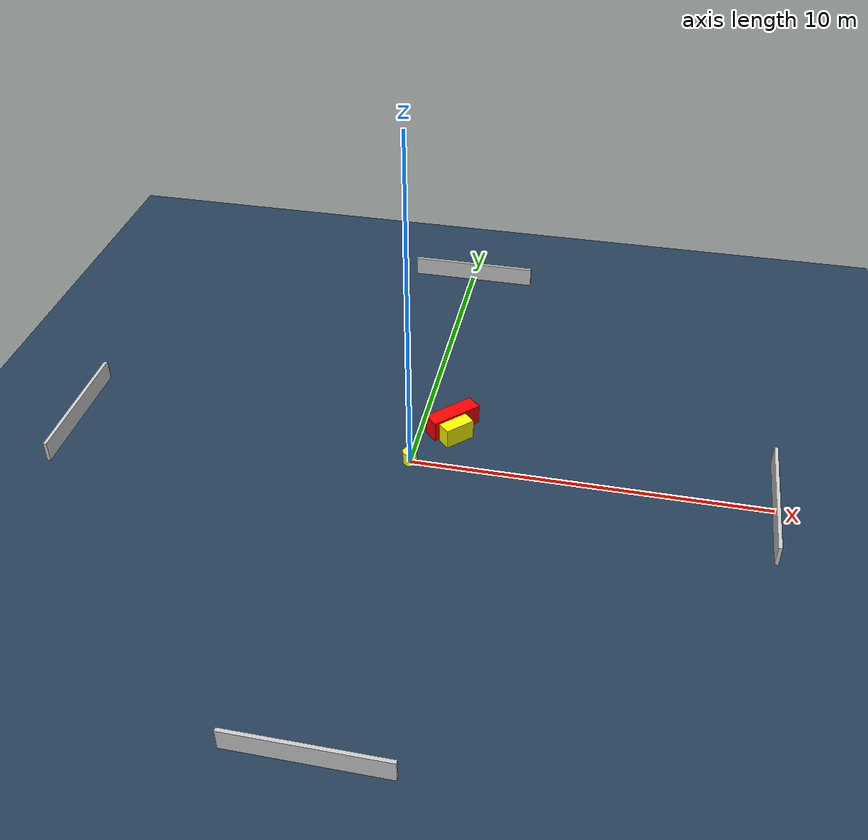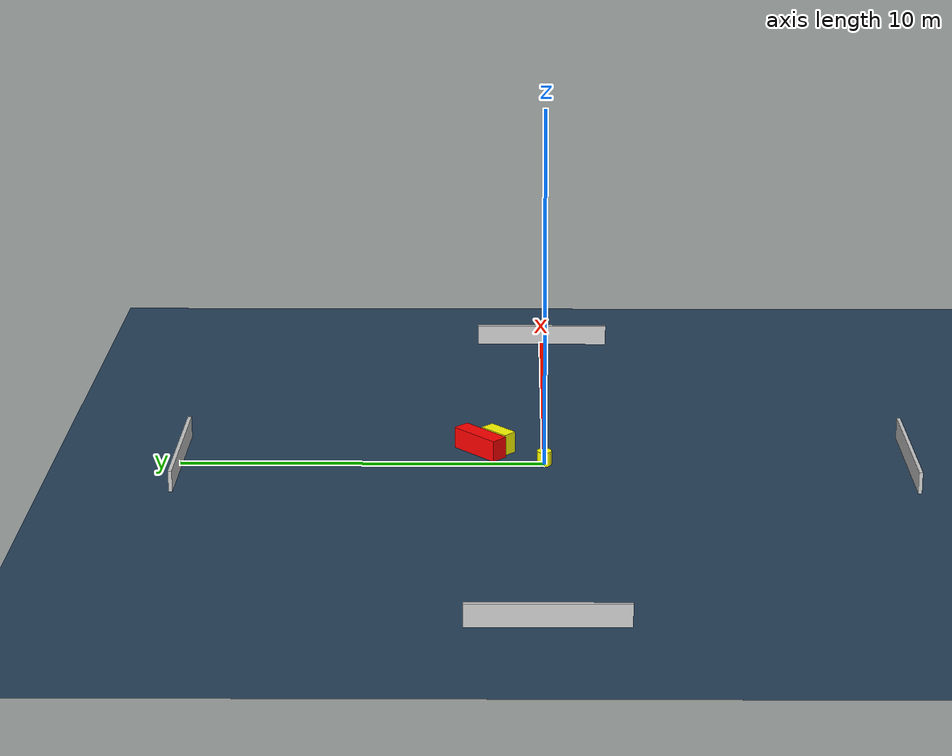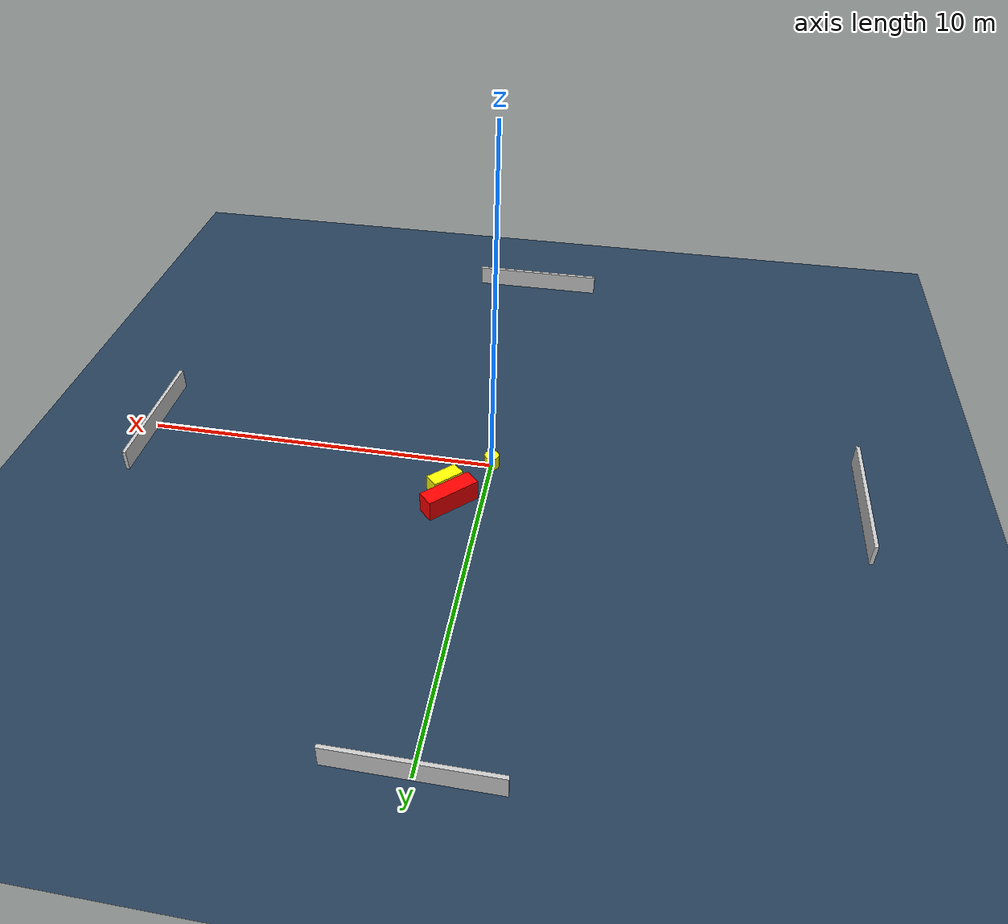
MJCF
<?xml version="1.0" ?>
<mujoco model="generated_environment">
  <option timestep="0.01" integrator="RK4" cone="elliptic"/>
  <default>
    <geom density="1"/>
  </default>
  <asset>
    <texture builtin="gradient" height="3072" name="skybox" rgb1="0.3 0.5 0.7" rgb2="0 0 0" type="skybox" width="512"/>
    <texture builtin="checker" height="300" name="groundplane" rgb1="0.2 0.3 0.4" rgb2="0.1 0.2 0.3" type="2d" width="300"/>
    <material name="groundplane" reflectance="0.2" texrepeat="5 5" texture="groundplane"/>
  </asset>
  <worldbody>
    <light dir="0 0 -1" directional="true" pos="0 0 1.5"/>
    <geom condim="3" friction="0.5 0.005 0.001" material="groundplane" name="floor" pos="0 0 0" size="0 0 0.05" type="plane"/>
    <body name="walls">
      <geom name="wall_1" condim="4" pos="-10.0 0.0 0.3" rgba="0.800000011920929 0.800000011920929 0.800000011920929 1.0" size="0.05 2.0 0.3" type="box"/>
      <geom name="wall_2" condim="4" pos="10.0 0.0 0.3" rgba="0.800000011920929 0.800000011920929 0.800000011920929 1.0" size="0.05 2.0 0.3" type="box"/>
      <geom name="wall_3" condim="4" pos="0.0 -10.0 0.3" rgba="0.800000011920929 0.800000011920929 0.800000011920929 1.0" size="2.0 0.05 0.3" type="box"/>
      <geom name="wall_4" condim="4" pos="0.0 10.0 0.3" rgba="0.800000011920929 0.800000011920929 0.800000011920929 1.0" size="2.0 0.05 0.3" type="box"/>
    </body>
    <body name="robot">
      <joint name="joint_x" type="slide" pos="0 0 0" axis="1 0 0"/>
      <joint name="joint_y" type="slide" pos="0 0 0" axis="0 1 0"/>
      <geom name="robot" type="cylinder" pos="0.0 0.0 0.2" size="0.2 0.2 0.0" mass="5.0" friction="1.0 0.005 0.0001" condim="4" rgba="1.0 1.0 0.0 1.0"/>
    </body>
    <body name="obstacle_1_movable">
      <geom name="obstacle_1_movable" condim="4" pos="1.0802435503164864 1.266288609729357 0.3" euler="0 0 45.2407993620347" friction="0.0 0.005 0.001" rgba="1.0 1.0 0.0 1.0" size="0.4542910100329561 0.20289466631380884 0.3" type="box" mass="0.1"/>
      <joint type="free"/>
    </body>
    <body name="obstacle_2_static">
      <geom name="obstacle_2_static" condim="4" pos="0.8679105806498514 1.7759927636570318 0.3" euler="0 0 135.2410734292534" friction="0.0 0.005 0.001" rgba="1.0 0.0 0.0 1.0" size="0.24266519836976197 0.7703158658374585 0.3" type="box"/>
    </body>
  </worldbody>
  <actuator>
    <motor name="actuator_x" joint="joint_x" gear="1" ctrlrange="-1 1"/>
    <motor name="actuator_y" joint="joint_y" gear="1" ctrlrange="-1 1"/>
  </actuator>
</mujoco>
